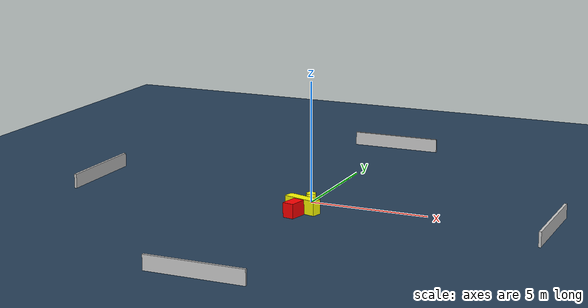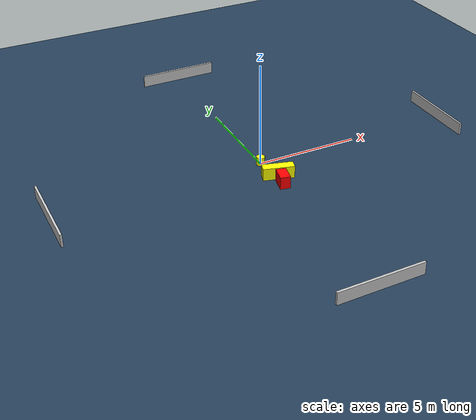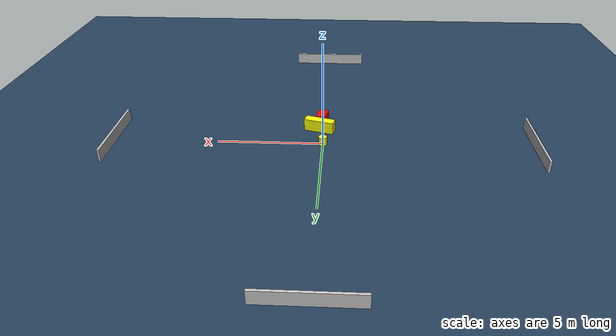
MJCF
<?xml version="1.0" ?>
<mujoco model="generated_environment">
  <option timestep="0.01" integrator="RK4" cone="elliptic"/>
  <default>
    <geom density="1"/>
  </default>
  <asset>
    <texture builtin="gradient" height="3072" name="skybox" rgb1="0.3 0.5 0.7" rgb2="0 0 0" type="skybox" width="512"/>
    <texture builtin="checker" height="300" name="groundplane" rgb1="0.2 0.3 0.4" rgb2="0.1 0.2 0.3" type="2d" width="300"/>
    <material name="groundplane" reflectance="0.2" texrepeat="5 5" texture="groundplane"/>
  </asset>
  <worldbody>
    <light dir="0 0 -1" directional="true" pos="0 0 1.5"/>
    <geom condim="3" friction="0.5 0.005 0.001" material="groundplane" name="floor" pos="0 0 0" size="0 0 0.05" type="plane"/>
    <body name="walls">
      <geom name="wall_1" condim="4" pos="-10.0 0.0 0.3" rgba="0.800000011920929 0.800000011920929 0.800000011920929 1.0" size="0.05 2.0 0.3" type="box"/>
      <geom name="wall_2" condim="4" pos="10.0 0.0 0.3" rgba="0.800000011920929 0.800000011920929 0.800000011920929 1.0" size="0.05 2.0 0.3" type="box"/>
      <geom name="wall_3" condim="4" pos="0.0 -10.0 0.3" rgba="0.800000011920929 0.800000011920929 0.800000011920929 1.0" size="2.0 0.05 0.3" type="box"/>
      <geom name="wall_4" condim="4" pos="0.0 10.0 0.3" rgba="0.800000011920929 0.800000011920929 0.800000011920929 1.0" size="2.0 0.05 0.3" type="box"/>
    </body>
    <body name="robot">
      <joint name="joint_x" type="slide" pos="0 0 0" axis="1 0 0"/>
      <joint name="joint_y" type="slide" pos="0 0 0" axis="0 1 0"/>
      <geom name="robot" type="cylinder" pos="0.0 0.0 0.2" size="0.2 0.2 0.0" mass="5.0" friction="1.0 0.005 0.0001" condim="4" rgba="1.0 1.0 0.0 1.0"/>
    </body>
    <body name="obstacle_1_movable">
      <geom name="obstacle_1_movable" condim="4" pos="0.20944885302287441 -1.3347313856077485 0.3" euler="0 0 344.1508858943326" friction="0.0 0.005 0.001" rgba="1.0 1.0 0.0 1.0" size="0.7309399615708467 0.2159289947995489 0.3" type="box" mass="0.1"/>
      <joint type="free"/>
    </body>
    <body name="obstacle_2_static">
      <geom name="obstacle_2_static" condim="4" pos="0.11143072877932127 -1.9935155197623076 0.3" euler="0 0 78.36061994721433" friction="0.0 0.005 0.001" rgba="1.0 0.0 0.0 1.0" size="0.3777362584858869 0.23698236538559342 0.3" type="box"/>
    </body>
  </worldbody>
  <actuator>
    <motor name="actuator_x" joint="joint_x" gear="1" ctrlrange="-1 1"/>
    <motor name="actuator_y" joint="joint_y" gear="1" ctrlrange="-1 1"/>
  </actuator>
</mujoco>
